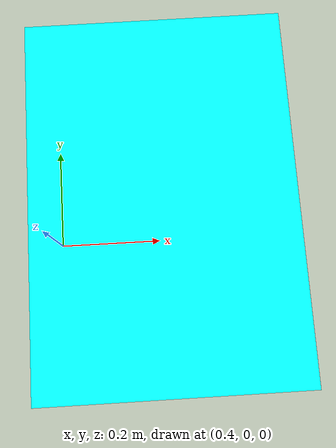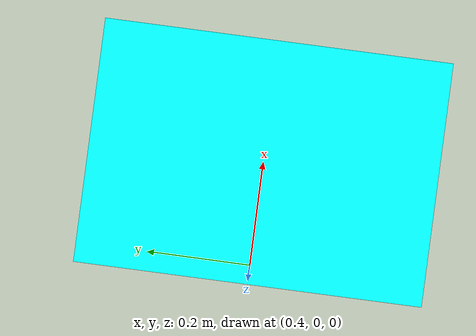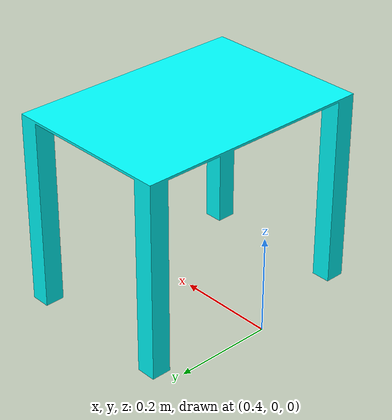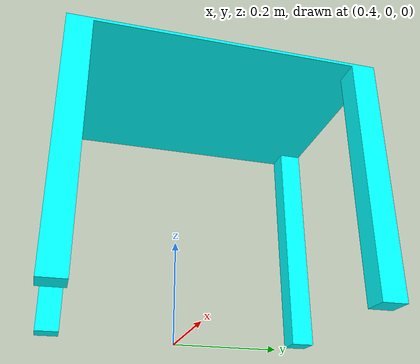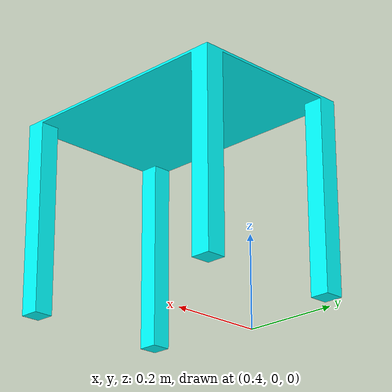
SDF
<?xml version='1.0'?>
<sdf version='1.6'>
<model name ='Desk'>
  <pose>0 0 0 0 0 0</pose>

    <joint name="desk_joint" type="fixed">
      <parent>world</parent>
      <child>desk_link</child>
    </joint>

    <link name='desk_link'>
    <pose relative_to='world'>0.6 0 0.4 0 0 0</pose>

    <collision name='desk_link_collision'>
      <pose>0 0 0 0 0 0</pose>
      <geometry>
        <mesh>
          <scale>1 1 1</scale>
          <uri>model://experiment_description/meshes/stl/Desk.stl</uri>
        </mesh>
      </geometry>
    </collision>

    <visual name='desk_link_visual'>
      <pose>0 0 0 0 0 0</pose>
      <geometry>
        <mesh>
          <scale>1 1 1</scale>
          <uri>model://experiment_description/meshes/stl/Desk.stl</uri>
        </mesh>
      </geometry>
      <material>
        <ambient>0 1 1 1</ambient>
      </material>
    </visual>
  </link>
</model>
</sdf>
